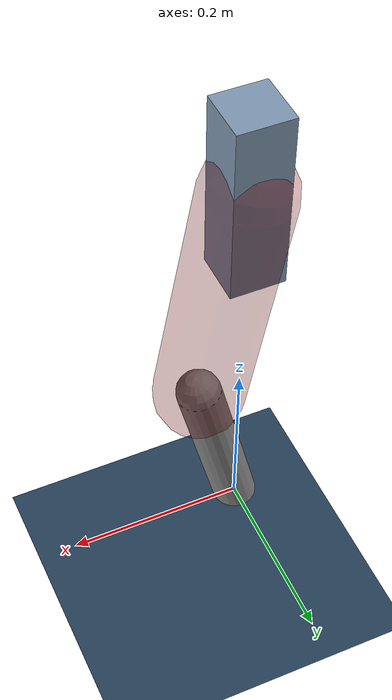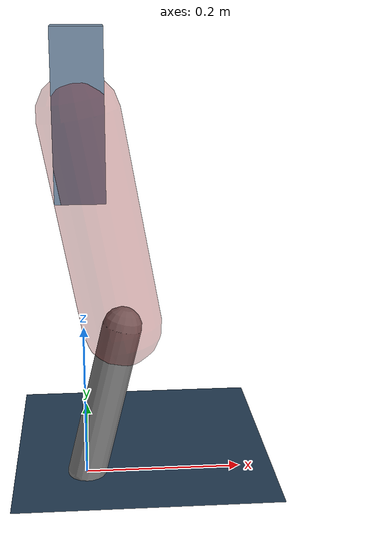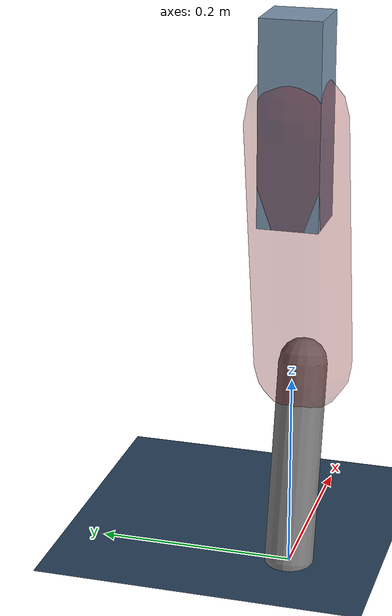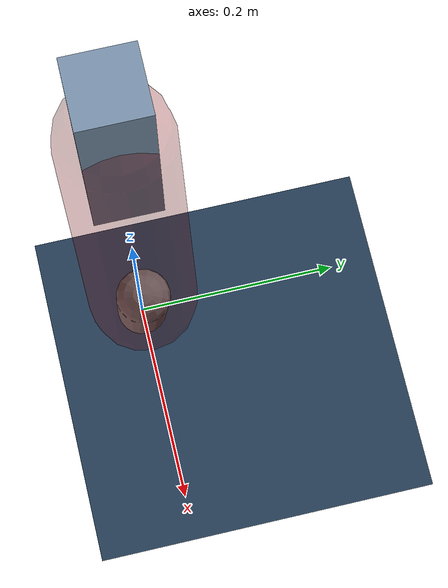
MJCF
<mujoco model="Hopper2D">
	<compiler inertiafromgeom="true" angle="radian" />
	<option timestep="0.001" integrator="implicit" cone="elliptic" solver="Newton" tolerance="1e-10" />

	<default>
		<geom contype="1" conaffinity="1" condim="3" friction="2 0.005 0.0001" solref="0.005 1" />
		<joint limited="true" damping="0.1" />
	</default>

	<asset>
		<texture name="skybox" type="skybox" builtin="gradient" rgb1=".4 .6 .8" rgb2="0 0 0" width="800" height="800" />
		<texture name="grid" type="2d" builtin="checker" rgb1=".1 .2 .3" rgb2=".2 .3 .4" width="300" height="300" mark="edge" markrgb=".2 .3 .4" />
		<material name="ground" texture="grid" texrepeat="1 1" texuniform="true" reflectance="0.1" />
		<material name="leg" rgba="0.5 0.6 0.7 1" />
	</asset>

	<worldbody>

		<geom name="floor" type="plane" size="5 5 0.25" material="ground" />

		<light directional="false" diffuse="0.8 0.8 0.8" specular="0.3 0.3 0.3" pos="0 0 2" dir="0 0 -1" />
		<light mode="targetbodycom" target="base" directional="false" diffuse="0.8 0.8 0.8" specular="0.3 0.3 0.3" pos="0 0 2" dir="0 0 -1" />

		<camera name="fixed" pos="0 -2 1" xyaxes="1 0 0 0 0 1" />
		<camera name="tracking" mode="trackcom" pos="0 -3 1" />

		<body name="root" pos="0 0 0.46410640995109476">
			<joint name="slide_x" type="slide" axis="1 0 0" range="-100 100" />
			<joint name="slide_z" type="slide" axis="0 0 1" range="0 10" />

			<body name="base" pos="0 0 0">
				<geom name="torso" type="box" size="0.03 0.03 0.1" mass="2.037" material="leg" />

				<body name="link1" pos="0 0 0" euler="0 1.3903504035140948 0">
					<joint type="hinge" axis="0 -1 0" pos="0 0 0" name="hinge1" limited="true" range="-3.14 3.14" stiffness="0" damping="0.1" />
					<geom name="thigh" type="capsule" fromto="0 0 0 0.2675205311164358 0 0" size="0.05" rgba="0.5 0 0 0.3" mass="0.9021533809027331" />

					<body name="link2" pos="0.2675205311164358 0 0" euler="0 0.41499487138994995 0">
						<joint type="hinge" axis="0 -1 0" pos="0 0 0" name="hinge2" limited="true" range="-3.14 3.14" stiffness="0" damping="0.1" />
						<geom name="shank" type="capsule" fromto="0 0 0 0.20658587883465893 0 0" size="0.025" mass="0.406427290951193" />

					</body>
				</body>
			</body>
		</body>
	</worldbody>

	<actuator>
		<motor name="torque1" joint="hinge1" ctrlrange="-73.83761559258566 73.83761559258566" ctrllimited="true" gear="1" />
		<motor name="torque2" joint="hinge2" ctrlrange="-59.53937680461166 59.53937680461166" ctrllimited="true" gear="1" />
	</actuator>
</mujoco>
